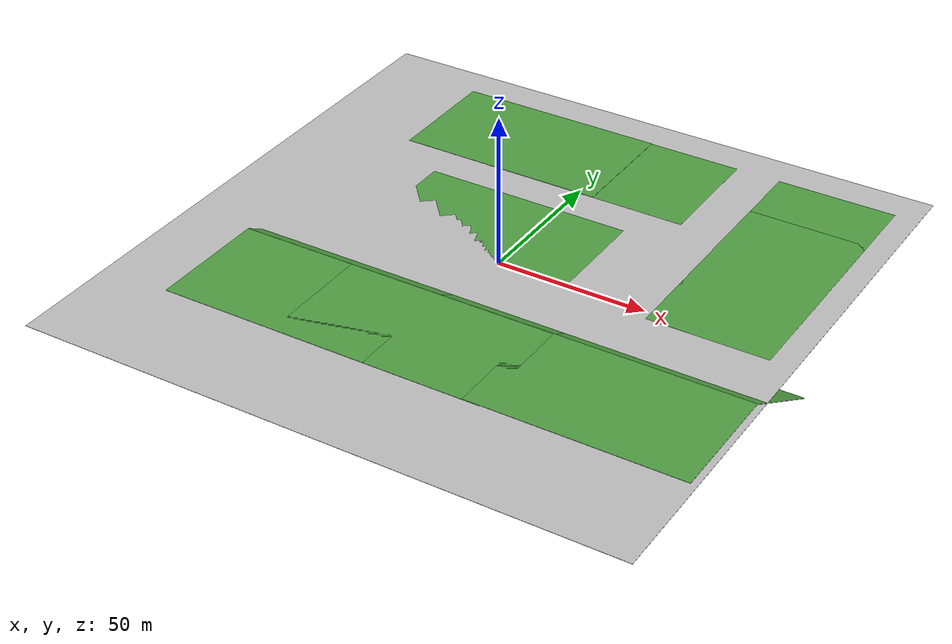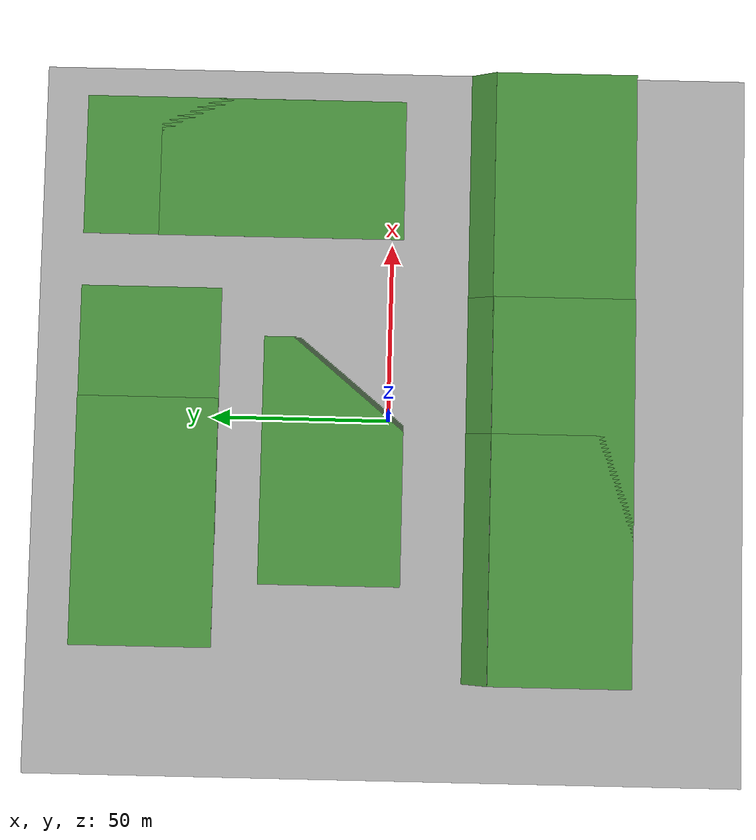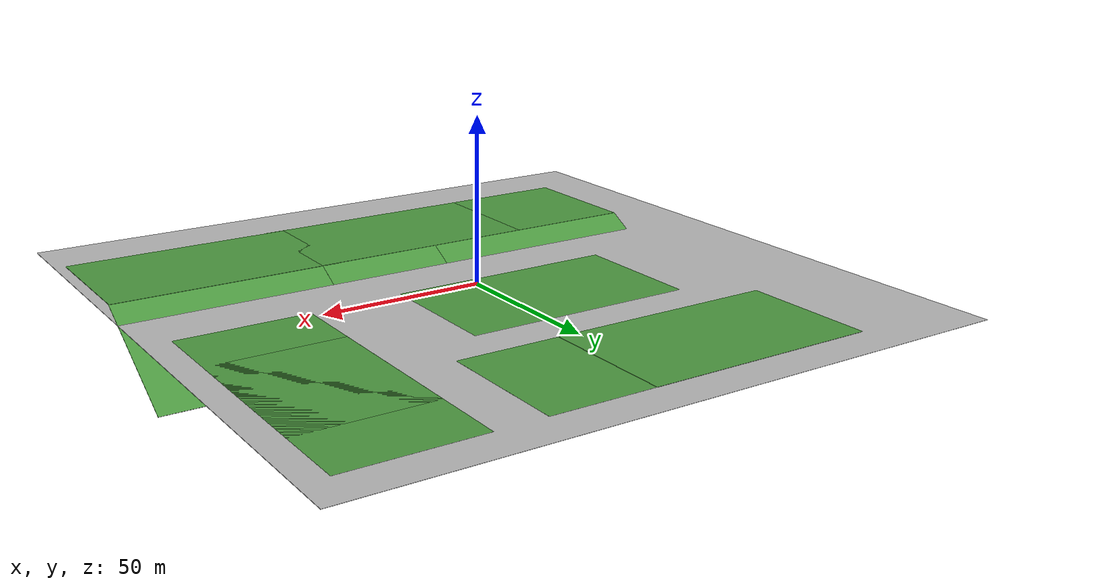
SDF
<sdf version="1.7">
 <world name="default">
  <light name="sun" type="directional">
   <pose>0 0 10 0 -0 0</pose>
   <diffuse>0.8 0.8 0.8 1</diffuse>
   <specular>0.2 0.2 0.2 1</specular>
   <attenuation>
    <range>1000</range>
    <constant>0.9</constant>
    <linear>0.01</linear>
    <quadratic>0.001</quadratic>
   </attenuation>
   <direction>-0.5 0.1 -0.9</direction>
   <spot><inner_angle>0</inner_angle><outer_angle>0</outer_angle><falloff>0</falloff></spot>
  </light>
  <gravity>0 0 -9.8</gravity>
  <magnetic_field>6e-06 2.3e-05 -4.2e-05</magnetic_field>
  <atmosphere type="adiabatic"/>
  <physics type="ode">
   <max_step_size>0.001</max_step_size>
   <real_time_factor>1</real_time_factor>
   <real_time_update_rate>1000</real_time_update_rate>
  </physics>
  <scene><ambient>0.4 0.4 0.4 1</ambient><background>0.7 0.7 0.7 1</background><shadows>1</shadows></scene>
  <spherical_coordinates>
   <surface_model>EARTH_WGS84</surface_model>
   <latitude_deg>0</latitude_deg>
   <longitude_deg>0</longitude_deg>
   <elevation>0</elevation>
   <heading_deg>0</heading_deg>
  </spherical_coordinates>
  <model name="winter_grass_plane">
   <static>1</static>
   <link name="link">
    <collision name="collision"><geometry><box><size>70 40 0.1</size></box></geometry></collision>
    <visual name="visual">
     <cast_shadows>0</cast_shadows>
     <geometry><box><size>70 40 0.1</size></box></geometry>
     <material>
      <script>
       <uri>model://winter_grass_plane/materials/scripts</uri>
       <uri>model://winter_grass_plane/materials/textures</uri>
       <name>pvc/winter_grass</name>
      </script>
     </material>
    </visual>
   </link>
   <pose>-11.4956 15.825 0 0 -0 0</pose>
  </model>
  <model name="winter_grass_plane_clone">
   <static>1</static>
   <link name="link">
    <collision name="collision"><geometry><box><size>70 40 0.1</size></box></geometry></collision>
    <visual name="visual">
     <cast_shadows>0</cast_shadows>
     <geometry><box><size>70 40 0.1</size></box></geometry>
     <material>
      <script>
       <uri>model://winter_grass_plane/materials/scripts</uri>
       <uri>model://winter_grass_plane/materials/textures</uri>
       <name>pvc/winter_grass</name>
      </script>
     </material>
    </visual>
   </link>
   <pose>-29.4283 68.3173 0.1 0 -0 0</pose>
  </model>
  <model name="winter_grass_plane_clone_0">
   <static>1</static>
   <link name="link">
    <collision name="collision"><geometry><box><size>70 40 0.1</size></box></geometry></collision>
    <visual name="visual">
     <cast_shadows>0</cast_shadows>
     <geometry><box><size>70 40 0.1</size></box></geometry>
     <material>
      <script>
       <uri>model://winter_grass_plane/materials/scripts</uri>
       <uri>model://winter_grass_plane/materials/textures</uri>
       <name>pvc/winter_grass</name>
      </script>
     </material>
    </visual>
   </link>
   <pose>1.98987 68.2216 0.01 0 -0 0</pose>
  </model>
  <model name="winter_grass_plane_clone_0_clone">
   <static>1</static>
   <link name="link">
    <collision name="collision"><geometry><box><size>70 40 0.1</size></box></geometry></collision>
    <visual name="visual">
     <cast_shadows>0</cast_shadows>
     <geometry><box><size>70 40 0.1</size></box></geometry>
     <material>
      <script>
       <uri>model://winter_grass_plane/materials/scripts</uri>
       <uri>model://winter_grass_plane/materials/textures</uri>
       <name>pvc/winter_grass</name>
      </script>
     </material>
    </visual>
   </link>
   <pose>71.9516 31.8655 0.01 0 -0 1.5708</pose>
  </model>
  <model name="winter_grass_plane_clone_0_clone_clone">
   <static>1</static>
   <link name="link">
    <collision name="collision"><geometry><box><size>70 40 0.1</size></box></geometry></collision>
    <visual name="visual">
     <cast_shadows>0</cast_shadows>
     <geometry><box><size>70 40 0.1</size></box></geometry>
     <material>
      <script>
       <uri>model://winter_grass_plane/materials/scripts</uri>
       <uri>model://winter_grass_plane/materials/textures</uri>
       <name>pvc/winter_grass</name>
      </script>
     </material>
    </visual>
   </link>
   <pose>71.9691 53.2936 0.01 0 -0 1.5708</pose>
  </model>
  <model name="concrete_plane">
   <static>1</static>
   <link name="link">
    <collision name="collision"><geometry><box><size>200 200 0.1</size></box></geometry></collision>
    <visual name="visual">
     <cast_shadows>0</cast_shadows>
     <geometry><box><size>200 200 0.1</size></box></geometry>
     <material>
      <script>
       <uri>model://concrete_plane/materials/scripts</uri>
       <uri>model://concrete_plane/materials/textures</uri>
       <name>vrc/concrete</name>
      </script>
     </material>
    </visual>
   </link>
  </model>
  <model name="winter_grass_plane_clone_0_clone_0">
   <static>1</static>
   <link name="link">
    <collision name="collision"><geometry><box><size>70 40 0.1</size></box></geometry></collision>
    <visual name="visual">
     <cast_shadows>0</cast_shadows>
     <geometry><box><size>70 40 0.1</size></box></geometry>
     <material>
      <script>
       <uri>model://winter_grass_plane/materials/scripts</uri>
       <uri>model://winter_grass_plane/materials/textures</uri>
       <name>pvc/winter_grass</name>
      </script>
     </material>
    </visual>
   </link>
   <pose>0.729938 -48.7648 4 0 -0 0</pose>
  </model>
  <model name="winter_grass_plane_clone_0_clone_1">
   <static>1</static>
   <link name="link">
    <collision name="collision"><geometry><box><size>70 40 0.1</size></box></geometry></collision>
    <visual name="visual">
     <cast_shadows>0</cast_shadows>
     <geometry><box><size>70 40 0.1</size></box></geometry>
     <material>
      <script>
       <uri>model://winter_grass_plane/materials/scripts</uri>
       <uri>model://winter_grass_plane/materials/textures</uri>
       <name>pvc/winter_grass</name>
      </script>
     </material>
    </visual>
   </link>
   <pose>-37.9141 -48.7415 4 0 -0 0</pose>
  </model>
  <model name="winter_grass_plane_clone_0_clone_1_clone">
   <static>1</static>
   <link name="link">
    <collision name="collision"><geometry><box><size>70 40 0.1</size></box></geometry></collision>
    <visual name="visual">
     <cast_shadows>0</cast_shadows>
     <geometry><box><size>70 40 0.1</size></box></geometry>
     <material>
      <script>
       <uri>model://winter_grass_plane/materials/scripts</uri>
       <uri>model://winter_grass_plane/materials/textures</uri>
       <name>pvc/winter_grass</name>
      </script>
     </material>
    </visual>
   </link>
   <pose>-37.914 -11.3543 -6.03427 -0.523599 0 0</pose>
  </model>
  <model name="winter_grass_plane_clone_0_clone_1_clone_clone">
   <static>1</static>
   <link name="link">
    <collision name="collision"><geometry><box><size>70 40 0.1</size></box></geometry></collision>
    <visual name="visual">
     <cast_shadows>0</cast_shadows>
     <geometry><box><size>70 40 0.1</size></box></geometry>
     <material>
      <script>
       <uri>model://winter_grass_plane/materials/scripts</uri>
       <uri>model://winter_grass_plane/materials/textures</uri>
       <name>pvc/winter_grass</name>
      </script>
     </material>
    </visual>
   </link>
   <pose>0.697921 -11.3561 -6.03427 -0.523599 0 0</pose>
  </model>
  <model name="winter_grass_plane_clone_0_clone_0_clone">
   <static>1</static>
   <link name="link">
    <collision name="collision"><geometry><box><size>70 40 0.1</size></box></geometry></collision>
    <visual name="visual">
     <cast_shadows>0</cast_shadows>
     <geometry><box><size>70 40 0.1</size></box></geometry>
     <material>
      <script>
       <uri>model://winter_grass_plane/materials/scripts</uri>
       <uri>model://winter_grass_plane/materials/textures</uri>
       <name>pvc/winter_grass</name>
      </script>
     </material>
    </visual>
   </link>
   <pose>64.9227 -48.5568 4 0 -0 0</pose>
  </model>
  <model name="winter_grass_plane_clone_0_clone_1_clone_clone_clone">
   <static>1</static>
   <link name="link">
    <collision name="collision"><geometry><box><size>70 40 0.1</size></box></geometry></collision>
    <visual name="visual">
     <cast_shadows>0</cast_shadows>
     <geometry><box><size>70 40 0.1</size></box></geometry>
     <material>
      <script>
       <uri>model://winter_grass_plane/materials/scripts</uri>
       <uri>model://winter_grass_plane/materials/textures</uri>
       <name>pvc/winter_grass</name>
      </script>
     </material>
    </visual>
   </link>
   <pose>65.0085 -11.3685 -6.03427 -0.523599 0 0</pose>
  </model>
 </world>
</sdf>
